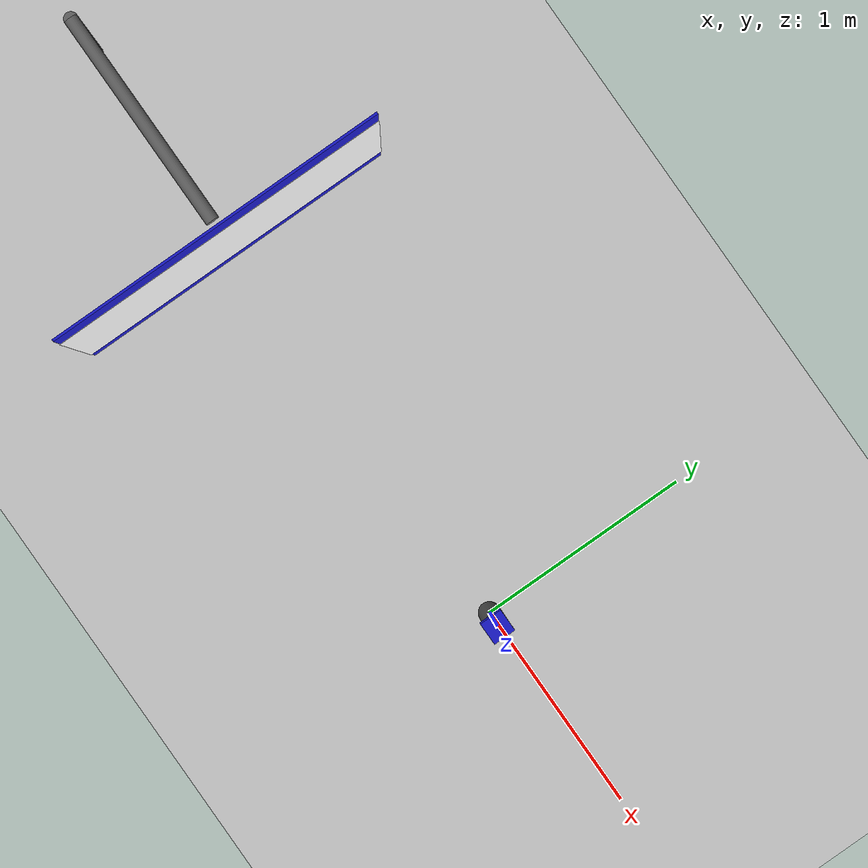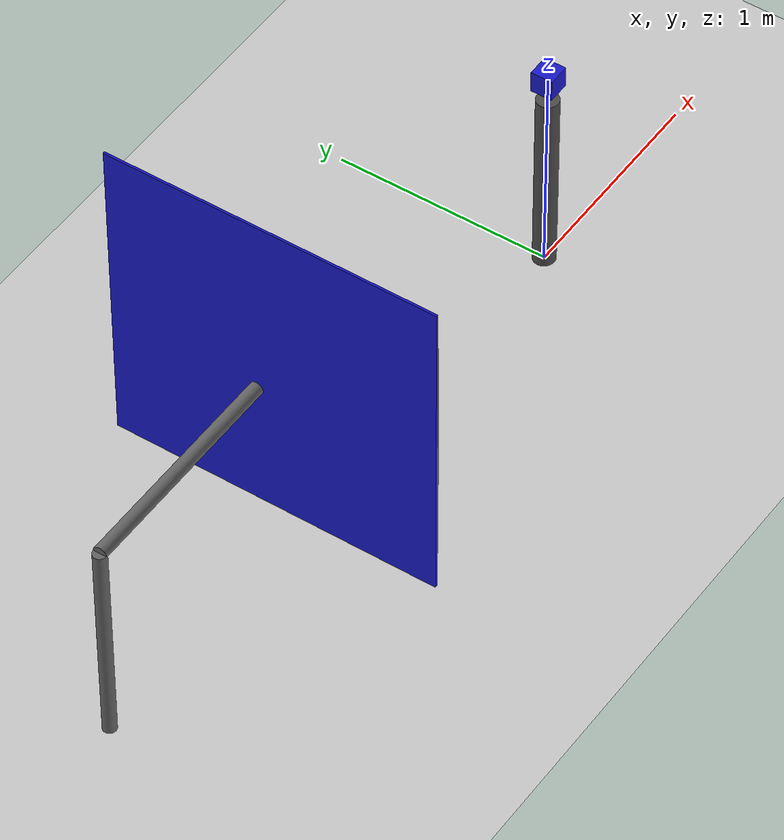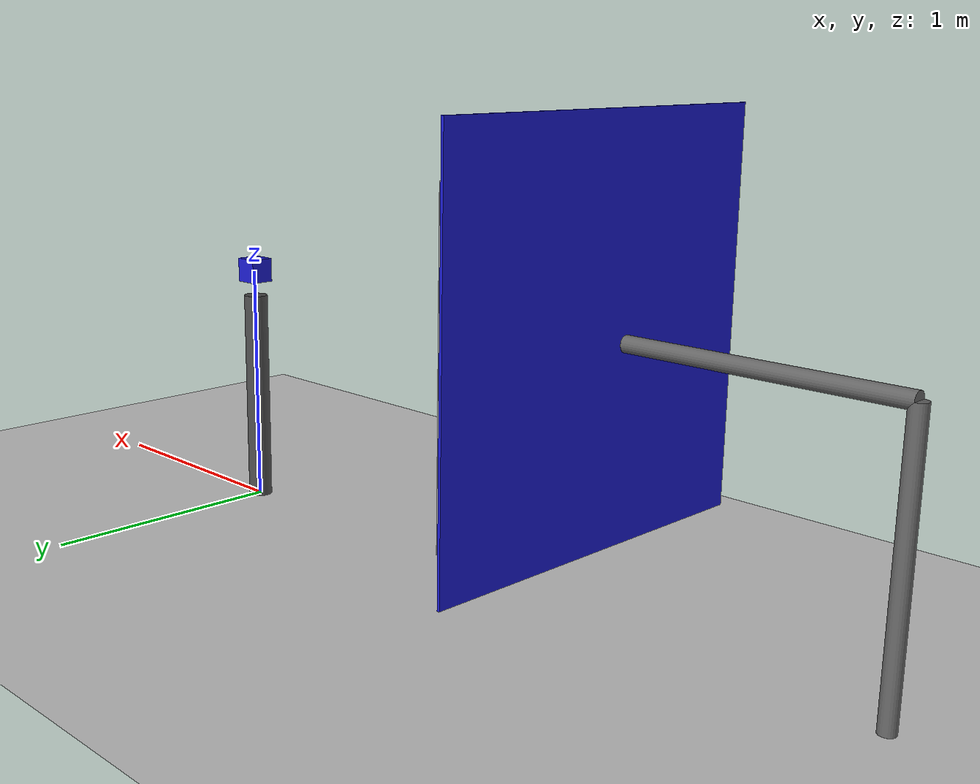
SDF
<?xml version="1.0" ?>
<sdf version="1.8">
    <world name="car_world">
        <physics name="1ms" type="ignored">
            <max_step_size>0.001</max_step_size>
            <real_time_factor>1.0</real_time_factor>
        </physics>
        <plugin
            filename="libignition-gazebo-physics-system.so"
            name="ignition::gazebo::systems::Physics">
        </plugin>
        <plugin
            filename="libignition-gazebo-user-commands-system.so"
            name="ignition::gazebo::systems::UserCommands">
        </plugin>
        <plugin
            filename="libignition-gazebo-scene-broadcaster-system.so"
            name="ignition::gazebo::systems::SceneBroadcaster">
        </plugin>
        <plugin
            filename="libignition-gazebo-sensors-system.so"
            name="ignition::gazebo::systems::Sensors">
            <render_engine>ogre2</render_engine>
        </plugin>

        <light type="directional" name="sun">
            <cast_shadows>true</cast_shadows>
            <pose>0 0 10 0 0 0</pose>
            <diffuse>0.8 0.8 0.8 1</diffuse>
            <specular>0.2 0.2 0.2 1</specular>
            <attenuation>
                <range>1000</range>
                <constant>0.9</constant>
                <linear>0.01</linear>
                <quadratic>0.001</quadratic>
            </attenuation>
            <direction>-0.5 0.1 -0.9</direction>
        </light>

        <model name="ground_plane">
            <static>true</static>
            <link name="link">
                <collision name="collision">
                <geometry>
                    <plane>
                    <normal>0 0 1</normal>
                    </plane>
                </geometry>
                </collision>
                <visual name="visual">
                <geometry>
                    <plane>
                    <normal>0 0 1</normal>
                    <size>100 100</size>
                    </plane>
                </geometry>
                <material>
                    <ambient>0.8 0.8 0.8 1</ambient>
                    <diffuse>0.8 0.8 0.8 1</diffuse>
                    <specular>0.8 0.8 0.8 1</specular>
                </material>
                </visual>
            </link>
        </model>

        <model name="camera_model">
            <static>true</static>
            <pose>0 0 0 0 0 3.1416</pose>

            <!-- 1-metre pole -->
            <link name="pole">
                <pose>0 0 0.45 0 0 0</pose>
                <collision name="pole_collision">
                    <geometry>
                        <cylinder>
                            <radius>0.05</radius>
                            <length>0.9</length>
                        </cylinder>
                    </geometry>
                </collision>
                <visual name="pole_visual">
                    <geometry>
                        <cylinder>
                            <radius>0.05</radius>
                            <length>0.9</length>
                        </cylinder>
                    </geometry>
                    <material>
                        <ambient>0.3 0.3 0.3 1</ambient>
                        <diffuse>0.3 0.3 0.3 1</diffuse>
                        <specular>0.1 0.1 0.1 1</specular>
                    </material>
                </visual>
            </link>

            <!-- Camera body sitting on top of the pole (z = 1.0 m) -->
            <link name="camera_link">
                <pose>0 0 1.01 0 0 0</pose>
                <collision name="camera_collision">
                    <geometry>
                        <box>
                            <size>0.1 0.1 0.1</size>
                        </box>
                    </geometry>
                </collision>
                <visual name="camera_visual">
                    <geometry>
                        <box>
                            <size>0.1 0.1 0.1</size>
                        </box>
                    </geometry>
                    <material>
                        <ambient>0.1 0.1 0.8 1</ambient>
                        <diffuse>0.1 0.1 0.8 1</diffuse>
                        <specular>0.1 0.1 0.1 1</specular>
                    </material>
                </visual>

                <sensor name="camera_sensor" type="camera">
                    <pose>0 0 0 0 0 0</pose>
                    <camera>
                        <horizontal_fov>1.047</horizontal_fov>
                        <image>
                            <width>640</width>
                            <height>480</height>
                            <format>R8G8B8</format>
                        </image>
                        <clip>
                            <near>0.1</near>
                            <far>100</far>
                        </clip>
                    </camera>
                    <always_on>1</always_on>
                    <update_rate>30</update_rate>
                    <visualize>true</visualize>
                    <topic>/camera/image_raw</topic>
                </sensor>
            </link>

            <joint name="pole_to_camera" type="fixed">
                <parent>pole</parent>
                <child>camera_link</child>
            </joint>

        </model>

        <!-- Board mount: vertical pole at x=3 + horizontal arm to board centre -->
        <model name="board_stand">
            <static>false</static>
            <pose>0 0 0 0 0 3.1416</pose>

            <!-- Vertical pole: x=3, y=0, from z=0 to z=1 (centre at z=0.5) -->
            <link name="vertical_pole">
                <pose>3.0 0 0.5 0 0 0</pose>
                <collision name="vpole_collision">
                    <geometry>
                        <cylinder>
                            <radius>0.03</radius>
                            <length>1.0</length>
                        </cylinder>
                    </geometry>
                </collision>
                <visual name="vpole_visual">
                    <geometry>
                        <cylinder>
                            <radius>0.03</radius>
                            <length>1.0</length>
                        </cylinder>
                    </geometry>
                    <material>
                        <ambient>0.4 0.4 0.4 1</ambient>
                        <diffuse>0.4 0.4 0.4 1</diffuse>
                        <specular>0.2 0.2 0.2 1</specular>
                    </material>
                </visual>
            </link>

            <!-- Horizontal pole: from x=2 to x=3 at z=1 (centre at x=2.5, length=1.0)
                 Cylinder is Z-aligned by default, so rotate π/2 around Y to align with X -->
            <link name="horizontal_pole">
                <pose>2.5 0 1.0 0 1.5708 0</pose>
                <collision name="hpole_collision">
                    <geometry>
                        <cylinder>
                            <radius>0.03</radius>
                            <length>1.0</length>
                        </cylinder>
                    </geometry>
                </collision>
                <visual name="hpole_visual">
                    <geometry>
                        <cylinder>
                            <radius>0.03</radius>
                            <length>1.0</length>
                        </cylinder>
                    </geometry>
                    <material>
                        <ambient>0.4 0.4 0.4 1</ambient>
                        <diffuse>0.4 0.4 0.4 1</diffuse>
                        <specular>0.2 0.2 0.2 1</specular>
                    </material>
                </visual>
            </link>

            <link name="callibration_board_link">
                <pose>1.9 0 1 0 -1.5708 0</pose>
                <inertial>
                    <mass>0.5</mass>
                    <inertia>
                        <ixx>0.09375</ixx><iyy>0.09375</iyy><izz>0.1875</izz>
                    </inertia>
                </inertial>
               <collision name="board_collision">
                    <geometry>
                        <box>
                            <size>1.5 1.5 0.01</size>
                        </box>
                    </geometry>
                </collision>
                <visual name="board_visual">
                    <geometry>
                        <box>
                            <size>1.5 1.5 0.01</size>
                        </box>
                    </geometry>
                    <material>
                        <ambient>0.1 0.1 0.8 1</ambient>
                        <diffuse>0.1 0.1 0.8 1</diffuse>
                        <specular>0.1 0.1 0.3 1</specular>
                    </material>
                </visual>
            <visual name="top_surface">
                <!-- visual surface in front of the board -->
                <pose>0 0 0.01 0 0 -1.5708</pose>
                <geometry>
                    <plane>
                    <normal>0 0 1</normal>
                    <size>1.5 1.132</size>
                    </plane>
                </geometry>
                <material>
                    <ambient>1.0 1.0 1.0 1</ambient>
                    <diffuse>1.0 1.0 1.0 1</diffuse>
                    <specular>0.5 0.5 0.5 1</specular>
                    <pbr>
                        <metal>
                            <albedo_map>/home/johan/Documents/masters/ros2_fortress_ws/markers/charuco.png</albedo_map>
                        </metal>
                    </pbr>
                </material>
                </visual>

            </link>

            <joint name="world_to_vertical_pole" type="fixed">
                <parent>world</parent>
                <child>vertical_pole</child>
            </joint>

            <joint name="vertical_to_horizontal" type="fixed">
                <parent>vertical_pole</parent>
                <child>horizontal_pole</child>
            </joint>

            <!-- Intermediate link for pan (yaw) -->
            <link name="pan_link">
                <pose>1.9 0 1 0 0 0</pose>
                <inertial>
                    <mass>0.001</mass>
                    <inertia><ixx>0.000001</ixx><iyy>0.000001</iyy><izz>0.000001</izz></inertia>
                </inertial>
            </link>

            <!-- Intermediate link for tilt (pitch) -->
            <link name="tilt_link">
                <pose>1.9 0 1 0 0 0</pose>
                <inertial>
                    <mass>0.001</mass>
                    <inertia><ixx>0.000001</ixx><iyy>0.000001</iyy><izz>0.000001</izz></inertia>
                </inertial>
            </link>

            <!-- pan_joint: rotates the board around Z (yaw) -->
            <joint name="pan_joint" type="revolute">
                <parent>horizontal_pole</parent>
                <child>pan_link</child>
                <axis>
                    <xyz>0 0 1</xyz>
                    <limit>
                        <lower>-3.1416</lower>
                        <upper>3.1416</upper>
                    </limit>
                </axis>
            </joint>

            <!-- tilt_joint: rotates the board around Y (pitch) -->
            <joint name="tilt_joint" type="revolute">
                <parent>pan_link</parent>
                <child>tilt_link</child>
                <axis>
                    <xyz>0 1 0</xyz>
                    <limit>
                        <lower>-1.5708</lower>
                        <upper>1.5708</upper>
                    </limit>
                </axis>
            </joint>

            <!-- y_axis_joint: slides the board along Y -->
            <joint name="y_axis_joint" type="prismatic">
                <parent>tilt_link</parent>
                <child>callibration_board_link</child>
                <axis>
                    <xyz>0 1 0</xyz>
                    <limit>
                        <lower>-0.3</lower>
                        <upper>0.3</upper>
                    </limit>
                </axis>
            </joint>

            <!-- JointPositionController for pan_joint -->
            <plugin
                filename="libignition-gazebo-joint-position-controller-system.so"
                name="ignition::gazebo::systems::JointPositionController">
                <joint_name>pan_joint</joint_name>
                <topic>/pan_joint/position</topic>
                <p_gain>25.0</p_gain>
                <i_gain>1.0</i_gain>
                <d_gain>100.0</d_gain>
            </plugin>

            <!-- JointPositionController for tilt_joint -->
            <plugin
                filename="libignition-gazebo-joint-position-controller-system.so"
                name="ignition::gazebo::systems::JointPositionController">
                <joint_name>tilt_joint</joint_name>
                <topic>/tilt_joint/position</topic>
                <p_gain>25.0</p_gain>
                <i_gain>1.0</i_gain>
                <d_gain>100.0</d_gain>
            </plugin>

            <!-- JointPositionController for y_axis_joint -->
            <plugin
                filename="libignition-gazebo-joint-position-controller-system.so"
                name="ignition::gazebo::systems::JointPositionController">
                <joint_name>y_axis_joint</joint_name>
                <topic>/y_axis_joint/position</topic>
                <p_gain>25.0</p_gain>
                <i_gain>1.0</i_gain>
                <d_gain>100.0</d_gain>
            </plugin>

            <!-- Joint state publisher -->
            <plugin
                filename="libignition-gazebo-joint-state-publisher-system.so"
                name="ignition::gazebo::systems::JointStatePublisher">
                <joint_name>pan_joint</joint_name>
                <joint_name>tilt_joint</joint_name>
                <joint_name>y_axis_joint</joint_name>
            </plugin>

        </model>

    </world>
</sdf>
